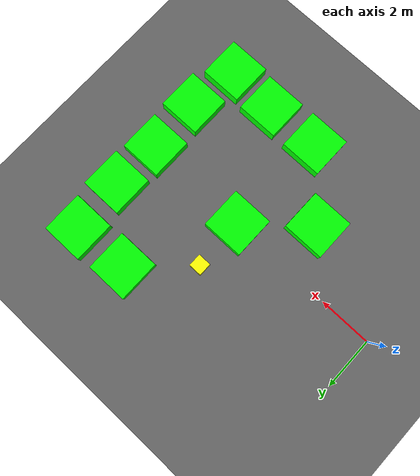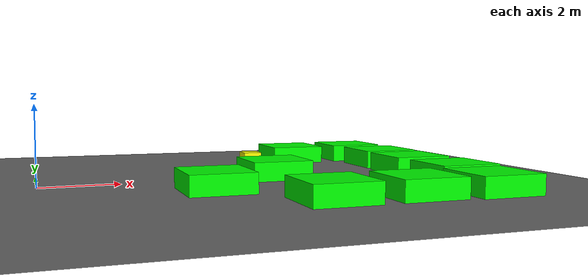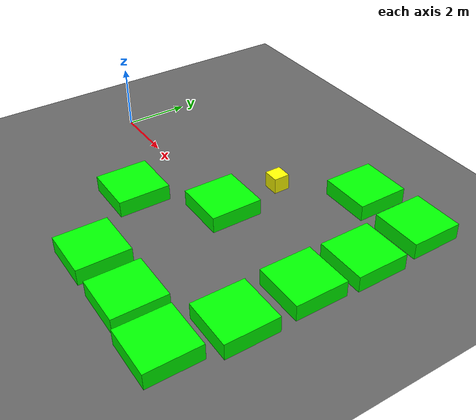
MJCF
<mujoco model="lvl5_deadend_obs15_d10_depth4_seed0">
    <compiler angle="degree" coordinate="local" inertiafromgeom="true"/>
    <option integrator="RK4" timestep="0.01"/>

    <asset>
        <texture builtin="gradient" height="100" rgb1="0.6 0.8 1" rgb2="0 0 0" type="skybox" width="100"/>
        <texture name="floor_texture" type="2d" builtin="checker" width="100" height="100" rgb1="0 0 0" rgb2="0.8 0.8 0.8"/>
        <material name="MatPlane" reflectance="0.5" shininess="1" specular="1" texrepeat="10 10" texture="floor_texture"/>
    </asset>

    <!-- Excluding the contact between the agent and the goal, and the agent and the floor -->
    <contact>
        <exclude body1="agent" body2="goal"/>
        <exclude body1 = "agent" body2 = "floor"/>
    </contact>

    <extension>
        <plugin plugin = "mujoco.pid">
            <instance name = "pid1">
                <config key="kp" value="2"/>
                <config key="ki" value="0"/>
                <config key="kd" value="55"/>
            </instance>
        </plugin>
    </extension>

    <worldbody>
        <light cutoff="100" diffuse="1 1 1" dir="-0 0 -1.3" directional="true" exponent="1" pos="0 0 1.3" specular=".1 .1 .1"/>
        <body name="floor" pos="0 0 0">
            <geom name="floor_geom" type="plane" size="20 20 0.1" material="MatPlane"/>
        </body>

                <body name="goal" pos="12.0000 -12.0000 0">
            <geom name="goal_geom" type="plane" size="0.5 0.5 1" pos="0 0 0" rgba="1 0 0 1"/>
        </body>

                <body name="agent" pos="6.0000 2.0000 0.250">
            <joint name="j1" type="slide" axis ="1 0 0 "/>
            <joint name="j2" type="slide" axis ="0 1 0 "/>
            <geom name="agent_geom" type="box" size="0.25 0.25 0.250" rgba="1 1 0 1"/>
        </body>

        <body name="obstacle1" pos="7.9230 3.8382 0.250">  <geom name="obstacle1_geom" type="box" size="0.8000 0.8000 0.250" rgba="0 1 0 1"/></body>
        <body name="obstacle2" pos="10.0008 3.9303 0.250">  <geom name="obstacle2_geom" type="box" size="0.8000 0.8000 0.250" rgba="0 1 0 1"/></body>
        <body name="obstacle3" pos="10.1508 1.8662 0.250">  <geom name="obstacle3_geom" type="box" size="0.8000 0.8000 0.250" rgba="0 1 0 1"/></body>
        <body name="obstacle4" pos="6.0365 0.0389 0.250">  <geom name="obstacle4_geom" type="box" size="0.8000 0.8000 0.250" rgba="0 1 0 1"/></body>
        <body name="obstacle5" pos="10.0838 -0.0567 0.250">  <geom name="obstacle5_geom" type="box" size="0.8000 0.8000 0.250" rgba="0 1 0 1"/></body>
        <body name="obstacle6" pos="3.9299 -1.8091 0.250">  <geom name="obstacle6_geom" type="box" size="0.8000 0.8000 0.250" rgba="0 1 0 1"/></body>
        <body name="obstacle7" pos="10.1542 -2.1460 0.250">  <geom name="obstacle7_geom" type="box" size="0.8000 0.8000 0.250" rgba="0 1 0 1"/></body>
        <body name="obstacle8" pos="5.9356 -3.9761 0.250">  <geom name="obstacle8_geom" type="box" size="0.8000 0.8000 0.250" rgba="0 1 0 1"/></body>
        <body name="obstacle9" pos="8.0063 -3.9636 0.250">  <geom name="obstacle9_geom" type="box" size="0.8000 0.8000 0.250" rgba="0 1 0 1"/></body>
        <body name="obstacle10" pos="9.8895 -4.0745 0.250">  <geom name="obstacle10_geom" type="box" size="0.8000 0.8000 0.250" rgba="0 1 0 1"/></body>

    </worldbody>

    <sensor>
<!-- SENSORS -->

        <distance name="dist1" geom1="agent_geom" geom2="obstacle1_geom" cutoff="1.5"/>
        <distance name="dist2" geom1="agent_geom" geom2="obstacle2_geom" cutoff="1.5"/>
        <distance name="dist3" geom1="agent_geom" geom2="obstacle3_geom" cutoff="1.5"/>
        <distance name="dist4" geom1="agent_geom" geom2="obstacle4_geom" cutoff="1.5"/>
        <distance name="dist5" geom1="agent_geom" geom2="obstacle5_geom" cutoff="1.5"/>
        <distance name="dist6" geom1="agent_geom" geom2="obstacle6_geom" cutoff="1.5"/>
        <distance name="dist7" geom1="agent_geom" geom2="obstacle7_geom" cutoff="1.5"/>
        <distance name="dist8" geom1="agent_geom" geom2="obstacle8_geom" cutoff="1.5"/>
        <distance name="dist9" geom1="agent_geom" geom2="obstacle9_geom" cutoff="1.5"/>
        <distance name="dist10" geom1="agent_geom" geom2="obstacle10_geom" cutoff="1.5"/>
</sensor>

    <actuator>
        <plugin joint="j1" plugin="mujoco.pid" instance="pid1" />
        <plugin joint="j2" plugin="mujoco.pid" instance="pid1"/>
    </actuator>
</mujoco>
